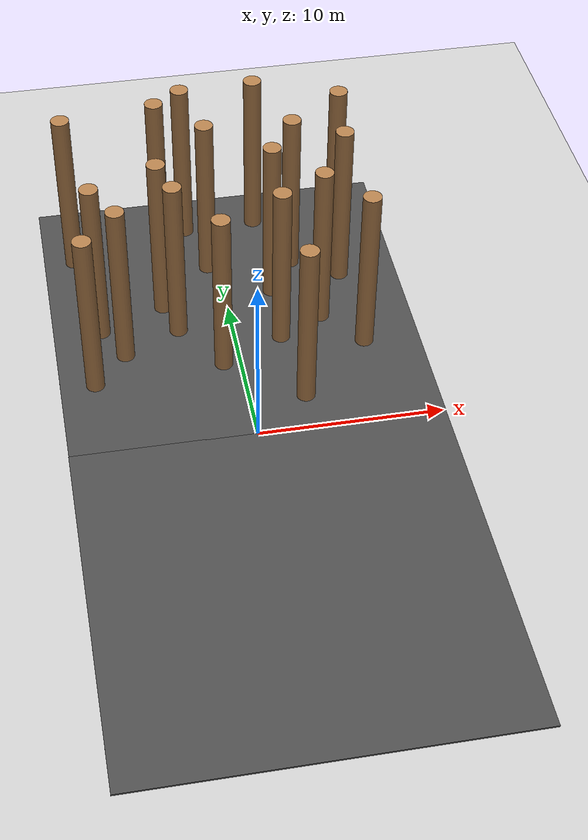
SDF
<sdf version="1.6">
 <world name="default">
  <model name="ground_plane">
   <static>1</static>
   <link name="link">
    <collision name="collision">
     <geometry><plane><normal>0 0 1</normal><size>100 100</size></plane></geometry>
     <surface><friction><ode><mu>100</mu><mu2>50</mu2></ode></friction></surface>
    </collision>
    <visual name="visual">
     <cast_shadows>0</cast_shadows>
     <geometry><plane><normal>0 0 1</normal><size>100 100</size></plane></geometry>
     <material>
      <script><uri>file://media/materials/scripts/gazebo.material</uri><name>Gazebo/Grey</name></script>
     </material>
    </visual>
   </link>
  </model>
  <model name="asphalt_plane_1">
   <static>1</static>
   <link name="link">
    <collision name="collision"><geometry><box><size>20 20 0.1</size></box></geometry></collision>
    <visual name="visual">
     <cast_shadows>0</cast_shadows>
     <geometry><box><size>20 20 0.1</size></box></geometry>
     <material>
      <script>
       <uri>model://asphalt_plane/materials/scripts</uri>
       <uri>model://asphalt_plane/materials/textures</uri>
       <name>vrc/asphalt</name>
      </script>
     </material>
    </visual>
   </link>
   <pose>0.098004 9.97829 0 0 -0 0</pose>
  </model>
  <model name="asphalt_plane_3">
   <static>1</static>
   <link name="link">
    <collision name="collision"><geometry><box><size>20 20 0.1</size></box></geometry></collision>
    <visual name="visual">
     <cast_shadows>0</cast_shadows>
     <geometry><box><size>20 20 0.1</size></box></geometry>
     <material>
      <script>
       <uri>model://asphalt_plane/materials/scripts</uri>
       <uri>model://asphalt_plane/materials/textures</uri>
       <name>vrc/asphalt</name>
      </script>
     </material>
    </visual>
   </link>
   <pose>0.085062 -9.98607 0 0 -0 0</pose>
  </model>
  <model name="train_4">
   <link name="link_0_clone_0_clone_11">
    <pose>4.2784 -11.9007 0.043478 0 -0 0</pose>
    <inertial>
     <mass>1000</mass>
     <inertia><ixx>0.145833</ixx><ixy>0</ixy><ixz>0</ixz><iyy>0.145833</iyy><iyz>0</iyz><izz>0.125</izz></inertia>
    </inertial>
    <visual name="visual">
     <pose>0 0 4.5 0 -0 0</pose>
     <geometry><cylinder><radius>0.5</radius><length>10</length></cylinder></geometry>
     <material>
      <lighting>1</lighting>
      <script><uri>file://media/materials/scripts/gazebo.material</uri><name>Gazebo/WoodFloor</name></script>
      <ambient>0.3 0.3 0.3 1</ambient>
      <diffuse>0.7 0.7 0.7 1</diffuse>
      <specular>0.01 0.01 0.01 1</specular>
      <emissive>0 0 0 1</emissive>
      <shader type="vertex"><normal_map>__default__</normal_map></shader>
     </material>
    </visual>
    <collision name="collision">
     <pose>0 0 4.5 0 -0 0</pose>
     <geometry><cylinder><radius>0.5</radius><length>10</length></cylinder></geometry>
     <surface>
      <friction>
       <ode><mu>1</mu><mu2>1</mu2><fdir1>0 0 0</fdir1><slip1>0</slip1><slip2>0</slip2></ode>
       <torsional>
        <coefficient>1</coefficient>
        <patch_radius>0</patch_radius>
        <surface_radius>0</surface_radius>
        <use_patch_radius>1</use_patch_radius>
        <ode><slip>0</slip></ode>
       </torsional>
      </friction>
      <bounce><restitution_coefficient>0</restitution_coefficient><threshold>1e+06</threshold></bounce>
      <contact>
       <collide_without_contact>0</collide_without_contact>
       <collide_without_contact_bitmask>1</collide_without_contact_bitmask>
       <collide_bitmask>1</collide_bitmask>
       <ode>
        <soft_cfm>0</soft_cfm>
        <soft_erp>0.2</soft_erp>
        <kp>1e+13</kp>
        <kd>1</kd>
        <max_vel>0.01</max_vel>
        <min_depth>0</min_depth>
       </ode>
       <bullet>
        <split_impulse>1</split_impulse>
        <split_impulse_penetration_threshold>-0.01</split_impulse_penetration_threshold>
        <soft_cfm>0</soft_cfm>
        <soft_erp>0.2</soft_erp>
        <kp>1e+13</kp>
        <kd>1</kd>
       </bullet>
      </contact>
     </surface>
    </collision>
   </link>
   <link name="link_0_clone_0_clone_11_clone_8">
    <pose>-6.90192 1.15105 0.043478 0 -0 3e-06</pose>
    <inertial>
     <mass>1000</mass>
     <inertia><ixx>0.145833</ixx><ixy>0</ixy><ixz>0</ixz><iyy>0.145833</iyy><iyz>0</iyz><izz>0.125</izz></inertia>
    </inertial>
    <visual name="visual">
     <pose>0 0 4.5 0 -0 0</pose>
     <geometry><cylinder><radius>0.5</radius><length>10</length></cylinder></geometry>
     <material>
      <lighting>1</lighting>
      <script><uri>file://media/materials/scripts/gazebo.material</uri><name>Gazebo/WoodFloor</name></script>
      <ambient>0.3 0.3 0.3 1</ambient>
      <diffuse>0.7 0.7 0.7 1</diffuse>
      <specular>0.01 0.01 0.01 1</specular>
      <emissive>0 0 0 1</emissive>
      <shader type="vertex"><normal_map>__default__</normal_map></shader>
     </material>
    </visual>
    <collision name="collision">
     <pose>0 0 4.5 0 -0 0</pose>
     <geometry><cylinder><radius>0.5</radius><length>10</length></cylinder></geometry>
     <surface>
      <friction>
       <ode><mu>1</mu><mu2>1</mu2><fdir1>0 0 0</fdir1><slip1>0</slip1><slip2>0</slip2></ode>
       <torsional>
        <coefficient>1</coefficient>
        <patch_radius>0</patch_radius>
        <surface_radius>0</surface_radius>
        <use_patch_radius>1</use_patch_radius>
        <ode><slip>0</slip></ode>
       </torsional>
      </friction>
      <bounce><restitution_coefficient>0</restitution_coefficient><threshold>1e+06</threshold></bounce>
      <contact>
       <collide_without_contact>0</collide_without_contact>
       <collide_without_contact_bitmask>1</collide_without_contact_bitmask>
       <collide_bitmask>1</collide_bitmask>
       <ode>
        <soft_cfm>0</soft_cfm>
        <soft_erp>0.2</soft_erp>
        <kp>1e+13</kp>
        <kd>1</kd>
        <max_vel>0.01</max_vel>
        <min_depth>0</min_depth>
       </ode>
       <bullet>
        <split_impulse>1</split_impulse>
        <split_impulse_penetration_threshold>-0.01</split_impulse_penetration_threshold>
        <soft_cfm>0</soft_cfm>
        <soft_erp>0.2</soft_erp>
        <kp>1e+13</kp>
        <kd>1</kd>
       </bullet>
      </contact>
     </surface>
    </collision>
   </link>
   <link name="link_0_clone_0_clone_5_clone_19_clone_24">
    <pose>-5.97869 -5.13561 0.043478 0 -0 6e-06</pose>
    <inertial>
     <mass>1000</mass>
     <inertia><ixx>0.145833</ixx><ixy>0</ixy><ixz>0</ixz><iyy>0.145833</iyy><iyz>0</iyz><izz>0.125</izz></inertia>
    </inertial>
    <visual name="visual">
     <pose>0 0 4.5 0 -0 0</pose>
     <geometry><cylinder><radius>0.5</radius><length>10</length></cylinder></geometry>
     <material>
      <lighting>1</lighting>
      <script><uri>file://media/materials/scripts/gazebo.material</uri><name>Gazebo/WoodFloor</name></script>
      <ambient>0.3 0.3 0.3 1</ambient>
      <diffuse>0.7 0.7 0.7 1</diffuse>
      <specular>0.01 0.01 0.01 1</specular>
      <emissive>0 0 0 1</emissive>
      <shader type="vertex"><normal_map>__default__</normal_map></shader>
     </material>
    </visual>
    <collision name="collision">
     <pose>0 0 4.5 0 -0 0</pose>
     <geometry><cylinder><radius>0.5</radius><length>10</length></cylinder></geometry>
     <surface>
      <friction>
       <ode><mu>1</mu><mu2>1</mu2><fdir1>0 0 0</fdir1><slip1>0</slip1><slip2>0</slip2></ode>
       <torsional>
        <coefficient>1</coefficient>
        <patch_radius>0</patch_radius>
        <surface_radius>0</surface_radius>
        <use_patch_radius>1</use_patch_radius>
        <ode><slip>0</slip></ode>
       </torsional>
      </friction>
      <bounce><restitution_coefficient>0</restitution_coefficient><threshold>1e+06</threshold></bounce>
      <contact>
       <collide_without_contact>0</collide_without_contact>
       <collide_without_contact_bitmask>1</collide_without_contact_bitmask>
       <collide_bitmask>1</collide_bitmask>
       <ode>
        <soft_cfm>0</soft_cfm>
        <soft_erp>0.2</soft_erp>
        <kp>1e+13</kp>
        <kd>1</kd>
        <max_vel>0.01</max_vel>
        <min_depth>0</min_depth>
       </ode>
       <bullet>
        <split_impulse>1</split_impulse>
        <split_impulse_penetration_threshold>-0.01</split_impulse_penetration_threshold>
        <soft_cfm>0</soft_cfm>
        <soft_erp>0.2</soft_erp>
        <kp>1e+13</kp>
        <kd>1</kd>
       </bullet>
      </contact>
     </surface>
    </collision>
   </link>
   <link name="link_0_clone_0_clone_5_clone_19_clone_32">
    <pose>8.50917 1.28403 0.043478 0 -0 6e-06</pose>
    <inertial>
     <mass>1000</mass>
     <inertia><ixx>0.145833</ixx><ixy>0</ixy><ixz>0</ixz><iyy>0.145833</iyy><iyz>0</iyz><izz>0.125</izz></inertia>
    </inertial>
    <visual name="visual">
     <pose>0 0 4.5 0 -0 0</pose>
     <geometry><cylinder><radius>0.5</radius><length>10</length></cylinder></geometry>
     <material>
      <lighting>1</lighting>
      <script><uri>file://media/materials/scripts/gazebo.material</uri><name>Gazebo/WoodFloor</name></script>
      <ambient>0.3 0.3 0.3 1</ambient>
      <diffuse>0.7 0.7 0.7 1</diffuse>
      <specular>0.01 0.01 0.01 1</specular>
      <emissive>0 0 0 1</emissive>
      <shader type="vertex"><normal_map>__default__</normal_map></shader>
     </material>
    </visual>
    <collision name="collision">
     <pose>0 0 4.5 0 -0 0</pose>
     <geometry><cylinder><radius>0.5</radius><length>10</length></cylinder></geometry>
     <surface>
      <friction>
       <ode><mu>1</mu><mu2>1</mu2><fdir1>0 0 0</fdir1><slip1>0</slip1><slip2>0</slip2></ode>
       <torsional>
        <coefficient>1</coefficient>
        <patch_radius>0</patch_radius>
        <surface_radius>0</surface_radius>
        <use_patch_radius>1</use_patch_radius>
        <ode><slip>0</slip></ode>
       </torsional>
      </friction>
      <bounce><restitution_coefficient>0</restitution_coefficient><threshold>1e+06</threshold></bounce>
      <contact>
       <collide_without_contact>0</collide_without_contact>
       <collide_without_contact_bitmask>1</collide_without_contact_bitmask>
       <collide_bitmask>1</collide_bitmask>
       <ode>
        <soft_cfm>0</soft_cfm>
        <soft_erp>0.2</soft_erp>
        <kp>1e+13</kp>
        <kd>1</kd>
        <max_vel>0.01</max_vel>
        <min_depth>0</min_depth>
       </ode>
       <bullet>
        <split_impulse>1</split_impulse>
        <split_impulse_penetration_threshold>-0.01</split_impulse_penetration_threshold>
        <soft_cfm>0</soft_cfm>
        <soft_erp>0.2</soft_erp>
        <kp>1e+13</kp>
        <kd>1</kd>
       </bullet>
      </contact>
     </surface>
    </collision>
   </link>
   <link name="link_0_clone_0_clone_5_clone_21">
    <pose>0.690093 -0.614865 0.043478 0 -0 3e-06</pose>
    <inertial>
     <mass>1000</mass>
     <inertia><ixx>0.145833</ixx><ixy>0</ixy><ixz>0</ixz><iyy>0.145833</iyy><iyz>0</iyz><izz>0.125</izz></inertia>
    </inertial>
    <visual name="visual">
     <pose>0 0 4.5 0 -0 0</pose>
     <geometry><cylinder><radius>0.5</radius><length>10</length></cylinder></geometry>
     <material>
      <lighting>1</lighting>
      <script><uri>file://media/materials/scripts/gazebo.material</uri><name>Gazebo/WoodFloor</name></script>
      <ambient>0.3 0.3 0.3 1</ambient>
      <diffuse>0.7 0.7 0.7 1</diffuse>
      <specular>0.01 0.01 0.01 1</specular>
      <emissive>0 0 0 1</emissive>
      <shader type="vertex"><normal_map>__default__</normal_map></shader>
     </material>
    </visual>
    <collision name="collision">
     <pose>0 0 4.5 0 -0 0</pose>
     <geometry><cylinder><radius>0.5</radius><length>10</length></cylinder></geometry>
     <surface>
      <friction>
       <ode><mu>1</mu><mu2>1</mu2><fdir1>0 0 0</fdir1><slip1>0</slip1><slip2>0</slip2></ode>
       <torsional>
        <coefficient>1</coefficient>
        <patch_radius>0</patch_radius>
        <surface_radius>0</surface_radius>
        <use_patch_radius>1</use_patch_radius>
        <ode><slip>0</slip></ode>
       </torsional>
      </friction>
      <bounce><restitution_coefficient>0</restitution_coefficient><threshold>1e+06</threshold></bounce>
      <contact>
       <collide_without_contact>0</collide_without_contact>
       <collide_without_contact_bitmask>1</collide_without_contact_bitmask>
       <collide_bitmask>1</collide_bitmask>
       <ode>
        <soft_cfm>0</soft_cfm>
        <soft_erp>0.2</soft_erp>
        <kp>1e+13</kp>
        <kd>1</kd>
        <max_vel>0.01</max_vel>
        <min_depth>0</min_depth>
       </ode>
       <bullet>
        <split_impulse>1</split_impulse>
        <split_impulse_penetration_threshold>-0.01</split_impulse_penetration_threshold>
        <soft_cfm>0</soft_cfm>
        <soft_erp>0.2</soft_erp>
        <kp>1e+13</kp>
        <kd>1</kd>
       </bullet>
      </contact>
     </surface>
    </collision>
   </link>
   <link name="link_0_clone_0_clone_5_clone_22">
    <pose>8.06962 -2.47589 0.043478 0 -0 3e-06</pose>
    <inertial>
     <mass>1000</mass>
     <inertia><ixx>0.145833</ixx><ixy>0</ixy><ixz>0</ixz><iyy>0.145833</iyy><iyz>0</iyz><izz>0.125</izz></inertia>
    </inertial>
    <visual name="visual">
     <pose>0 0 4.5 0 -0 0</pose>
     <geometry><cylinder><radius>0.5</radius><length>10</length></cylinder></geometry>
     <material>
      <lighting>1</lighting>
      <script><uri>file://media/materials/scripts/gazebo.material</uri><name>Gazebo/WoodFloor</name></script>
      <ambient>0.3 0.3 0.3 1</ambient>
      <diffuse>0.7 0.7 0.7 1</diffuse>
      <specular>0.01 0.01 0.01 1</specular>
      <emissive>0 0 0 1</emissive>
      <shader type="vertex"><normal_map>__default__</normal_map></shader>
     </material>
    </visual>
    <collision name="collision">
     <pose>0 0 4.5 0 -0 0</pose>
     <geometry><cylinder><radius>0.5</radius><length>10</length></cylinder></geometry>
     <surface>
      <friction>
       <ode><mu>1</mu><mu2>1</mu2><fdir1>0 0 0</fdir1><slip1>0</slip1><slip2>0</slip2></ode>
       <torsional>
        <coefficient>1</coefficient>
        <patch_radius>0</patch_radius>
        <surface_radius>0</surface_radius>
        <use_patch_radius>1</use_patch_radius>
        <ode><slip>0</slip></ode>
       </torsional>
      </friction>
      <bounce><restitution_coefficient>0</restitution_coefficient><threshold>1e+06</threshold></bounce>
      <contact>
       <collide_without_contact>0</collide_without_contact>
       <collide_without_contact_bitmask>1</collide_without_contact_bitmask>
       <collide_bitmask>1</collide_bitmask>
       <ode>
        <soft_cfm>0</soft_cfm>
        <soft_erp>0.2</soft_erp>
        <kp>1e+13</kp>
        <kd>1</kd>
        <max_vel>0.01</max_vel>
        <min_depth>0</min_depth>
       </ode>
       <bullet>
        <split_impulse>1</split_impulse>
        <split_impulse_penetration_threshold>-0.01</split_impulse_penetration_threshold>
        <soft_cfm>0</soft_cfm>
        <soft_erp>0.2</soft_erp>
        <kp>1e+13</kp>
        <kd>1</kd>
       </bullet>
      </contact>
     </surface>
    </collision>
   </link>
   <link name="link_0_clone_0_clone_5_clone_6_clone">
    <pose>0.335435 -8.77026 0.043478 0 -0 6e-06</pose>
    <inertial>
     <mass>1000</mass>
     <inertia><ixx>0.145833</ixx><ixy>0</ixy><ixz>0</ixz><iyy>0.145833</iyy><iyz>0</iyz><izz>0.125</izz></inertia>
    </inertial>
    <visual name="visual">
     <pose>0 0 4.5 0 -0 0</pose>
     <geometry><cylinder><radius>0.5</radius><length>10</length></cylinder></geometry>
     <material>
      <lighting>1</lighting>
      <script><uri>file://media/materials/scripts/gazebo.material</uri><name>Gazebo/WoodFloor</name></script>
      <ambient>0.3 0.3 0.3 1</ambient>
      <diffuse>0.7 0.7 0.7 1</diffuse>
      <specular>0.01 0.01 0.01 1</specular>
      <emissive>0 0 0 1</emissive>
      <shader type="vertex"><normal_map>__default__</normal_map></shader>
     </material>
    </visual>
    <collision name="collision">
     <pose>0 0 4.5 0 -0 0</pose>
     <geometry><cylinder><radius>0.5</radius><length>10</length></cylinder></geometry>
     <surface>
      <friction>
       <ode><mu>1</mu><mu2>1</mu2><fdir1>0 0 0</fdir1><slip1>0</slip1><slip2>0</slip2></ode>
       <torsional>
        <coefficient>1</coefficient>
        <patch_radius>0</patch_radius>
        <surface_radius>0</surface_radius>
        <use_patch_radius>1</use_patch_radius>
        <ode><slip>0</slip></ode>
       </torsional>
      </friction>
      <bounce><restitution_coefficient>0</restitution_coefficient><threshold>1e+06</threshold></bounce>
      <contact>
       <collide_without_contact>0</collide_without_contact>
       <collide_without_contact_bitmask>1</collide_without_contact_bitmask>
       <collide_bitmask>1</collide_bitmask>
       <ode>
        <soft_cfm>0</soft_cfm>
        <soft_erp>0.2</soft_erp>
        <kp>1e+13</kp>
        <kd>1</kd>
        <max_vel>0.01</max_vel>
        <min_depth>0</min_depth>
       </ode>
       <bullet>
        <split_impulse>1</split_impulse>
        <split_impulse_penetration_threshold>-0.01</split_impulse_penetration_threshold>
        <soft_cfm>0</soft_cfm>
        <soft_erp>0.2</soft_erp>
        <kp>1e+13</kp>
        <kd>1</kd>
       </bullet>
      </contact>
     </surface>
    </collision>
   </link>
   <link name="link_0_clone_0_clone_5_clone_6_clone_19">
    <pose>-0.161254 2.9232 0.043478 0 -0 6e-06</pose>
    <inertial>
     <mass>1000</mass>
     <inertia><ixx>0.145833</ixx><ixy>0</ixy><ixz>0</ixz><iyy>0.145833</iyy><iyz>0</iyz><izz>0.125</izz></inertia>
    </inertial>
    <visual name="visual">
     <pose>0 0 4.5 0 -0 0</pose>
     <geometry><cylinder><radius>0.5</radius><length>10</length></cylinder></geometry>
     <material>
      <lighting>1</lighting>
      <script><uri>file://media/materials/scripts/gazebo.material</uri><name>Gazebo/WoodFloor</name></script>
      <ambient>0.3 0.3 0.3 1</ambient>
      <diffuse>0.7 0.7 0.7 1</diffuse>
      <specular>0.01 0.01 0.01 1</specular>
      <emissive>0 0 0 1</emissive>
      <shader type="vertex"><normal_map>__default__</normal_map></shader>
     </material>
    </visual>
    <collision name="collision">
     <pose>0 0 4.5 0 -0 0</pose>
     <geometry><cylinder><radius>0.5</radius><length>10</length></cylinder></geometry>
     <surface>
      <friction>
       <ode><mu>1</mu><mu2>1</mu2><fdir1>0 0 0</fdir1><slip1>0</slip1><slip2>0</slip2></ode>
       <torsional>
        <coefficient>1</coefficient>
        <patch_radius>0</patch_radius>
        <surface_radius>0</surface_radius>
        <use_patch_radius>1</use_patch_radius>
        <ode><slip>0</slip></ode>
       </torsional>
      </friction>
      <bounce><restitution_coefficient>0</restitution_coefficient><threshold>1e+06</threshold></bounce>
      <contact>
       <collide_without_contact>0</collide_without_contact>
       <collide_without_contact_bitmask>1</collide_without_contact_bitmask>
       <collide_bitmask>1</collide_bitmask>
       <ode>
        <soft_cfm>0</soft_cfm>
        <soft_erp>0.2</soft_erp>
        <kp>1e+13</kp>
        <kd>1</kd>
        <max_vel>0.01</max_vel>
        <min_depth>0</min_depth>
       </ode>
       <bullet>
        <split_impulse>1</split_impulse>
        <split_impulse_penetration_threshold>-0.01</split_impulse_penetration_threshold>
        <soft_cfm>0</soft_cfm>
        <soft_erp>0.2</soft_erp>
        <kp>1e+13</kp>
        <kd>1</kd>
       </bullet>
      </contact>
     </surface>
    </collision>
   </link>
   <link name="link_0_clone_0_clone_5_clone_6_clone_20_clone">
    <pose>3.96296 -3.23891 0.043478 0 -0 9e-06</pose>
    <inertial>
     <mass>1000</mass>
     <inertia><ixx>0.145833</ixx><ixy>0</ixy><ixz>0</ixz><iyy>0.145833</iyy><iyz>0</iyz><izz>0.125</izz></inertia>
    </inertial>
    <visual name="visual">
     <pose>0 0 4.5 0 -0 0</pose>
     <geometry><cylinder><radius>0.5</radius><length>10</length></cylinder></geometry>
     <material>
      <lighting>1</lighting>
      <script><uri>file://media/materials/scripts/gazebo.material</uri><name>Gazebo/WoodFloor</name></script>
      <ambient>0.3 0.3 0.3 1</ambient>
      <diffuse>0.7 0.7 0.7 1</diffuse>
      <specular>0.01 0.01 0.01 1</specular>
      <emissive>0 0 0 1</emissive>
      <shader type="vertex"><normal_map>__default__</normal_map></shader>
     </material>
    </visual>
    <collision name="collision">
     <pose>0 0 4.5 0 -0 0</pose>
     <geometry><cylinder><radius>0.5</radius><length>10</length></cylinder></geometry>
     <surface>
      <friction>
       <ode><mu>1</mu><mu2>1</mu2><fdir1>0 0 0</fdir1><slip1>0</slip1><slip2>0</slip2></ode>
       <torsional>
        <coefficient>1</coefficient>
        <patch_radius>0</patch_radius>
        <surface_radius>0</surface_radius>
        <use_patch_radius>1</use_patch_radius>
        <ode><slip>0</slip></ode>
       </torsional>
      </friction>
      <bounce><restitution_coefficient>0</restitution_coefficient><threshold>1e+06</threshold></bounce>
      <contact>
       <collide_without_contact>0</collide_without_contact>
       <collide_without_contact_bitmask>1</collide_without_contact_bitmask>
       <collide_bitmask>1</collide_bitmask>
       <ode>
        <soft_cfm>0</soft_cfm>
        <soft_erp>0.2</soft_erp>
        <kp>1e+13</kp>
        <kd>1</kd>
        <max_vel>0.01</max_vel>
        <min_depth>0</min_depth>
       </ode>
       <bullet>
        <split_impulse>1</split_impulse>
        <split_impulse_penetration_threshold>-0.01</split_impulse_penetration_threshold>
        <soft_cfm>0</soft_cfm>
        <soft_erp>0.2</soft_erp>
        <kp>1e+13</kp>
        <kd>1</kd>
       </bullet>
      </contact>
     </surface>
    </collision>
   </link>
   <link name="link_0_clone_0_clone_5_clone_6_clone_20_clone_0">
    <pose>6.27357 -5.82931 0.043478 0 -0 9e-06</pose>
    <inertial>
     <mass>1000</mass>
     <inertia><ixx>0.145833</ixx><ixy>0</ixy><ixz>0</ixz><iyy>0.145833</iyy><iyz>0</iyz><izz>0.125</izz></inertia>
    </inertial>
    <visual name="visual">
     <pose>0 0 4.5 0 -0 0</pose>
     <geometry><cylinder><radius>0.5</radius><length>10</length></cylinder></geometry>
     <material>
      <lighting>1</lighting>
      <script><uri>file://media/materials/scripts/gazebo.material</uri><name>Gazebo/WoodFloor</name></script>
      <ambient>0.3 0.3 0.3 1</ambient>
      <diffuse>0.7 0.7 0.7 1</diffuse>
      <specular>0.01 0.01 0.01 1</specular>
      <emissive>0 0 0 1</emissive>
      <shader type="vertex"><normal_map>__default__</normal_map></shader>
     </material>
    </visual>
    <collision name="collision">
     <pose>0 0 4.5 0 -0 0</pose>
     <geometry><cylinder><radius>0.5</radius><length>10</length></cylinder></geometry>
     <surface>
      <friction>
       <ode><mu>1</mu><mu2>1</mu2><fdir1>0 0 0</fdir1><slip1>0</slip1><slip2>0</slip2></ode>
       <torsional>
        <coefficient>1</coefficient>
        <patch_radius>0</patch_radius>
        <surface_radius>0</surface_radius>
        <use_patch_radius>1</use_patch_radius>
        <ode><slip>0</slip></ode>
       </torsional>
      </friction>
      <bounce><restitution_coefficient>0</restitution_coefficient><threshold>1e+06</threshold></bounce>
      <contact>
       <collide_without_contact>0</collide_without_contact>
       <collide_without_contact_bitmask>1</collide_without_contact_bitmask>
       <collide_bitmask>1</collide_bitmask>
       <ode>
        <soft_cfm>0</soft_cfm>
        <soft_erp>0.2</soft_erp>
        <kp>1e+13</kp>
        <kd>1</kd>
        <max_vel>0.01</max_vel>
        <min_depth>0</min_depth>
       </ode>
       <bullet>
        <split_impulse>1</split_impulse>
        <split_impulse_penetration_threshold>-0.01</split_impulse_penetration_threshold>
        <soft_cfm>0</soft_cfm>
        <soft_erp>0.2</soft_erp>
        <kp>1e+13</kp>
        <kd>1</kd>
       </bullet>
      </contact>
     </surface>
    </collision>
   </link>
   <link name="link_0_clone_0_clone_5_clone_6_clone_20_clone_1">
    <pose>8.27397 -8.24678 0.043478 0 -0 9e-06</pose>
    <inertial>
     <mass>1000</mass>
     <inertia><ixx>0.145833</ixx><ixy>0</ixy><ixz>0</ixz><iyy>0.145833</iyy><iyz>0</iyz><izz>0.125</izz></inertia>
    </inertial>
    <visual name="visual">
     <pose>0 0 4.5 0 -0 0</pose>
     <geometry><cylinder><radius>0.5</radius><length>10</length></cylinder></geometry>
     <material>
      <lighting>1</lighting>
      <script><uri>file://media/materials/scripts/gazebo.material</uri><name>Gazebo/WoodFloor</name></script>
      <ambient>0.3 0.3 0.3 1</ambient>
      <diffuse>0.7 0.7 0.7 1</diffuse>
      <specular>0.01 0.01 0.01 1</specular>
      <emissive>0 0 0 1</emissive>
      <shader type="vertex"><normal_map>__default__</normal_map></shader>
     </material>
    </visual>
    <collision name="collision">
     <pose>0 0 4.5 0 -0 0</pose>
     <geometry><cylinder><radius>0.5</radius><length>10</length></cylinder></geometry>
     <surface>
      <friction>
       <ode><mu>1</mu><mu2>1</mu2><fdir1>0 0 0</fdir1><slip1>0</slip1><slip2>0</slip2></ode>
       <torsional>
        <coefficient>1</coefficient>
        <patch_radius>0</patch_radius>
        <surface_radius>0</surface_radius>
        <use_patch_radius>1</use_patch_radius>
        <ode><slip>0</slip></ode>
       </torsional>
      </friction>
      <bounce><restitution_coefficient>0</restitution_coefficient><threshold>1e+06</threshold></bounce>
      <contact>
       <collide_without_contact>0</collide_without_contact>
       <collide_without_contact_bitmask>1</collide_without_contact_bitmask>
       <collide_bitmask>1</collide_bitmask>
       <ode>
        <soft_cfm>0</soft_cfm>
        <soft_erp>0.2</soft_erp>
        <kp>1e+13</kp>
        <kd>1</kd>
        <max_vel>0.01</max_vel>
        <min_depth>0</min_depth>
       </ode>
       <bullet>
        <split_impulse>1</split_impulse>
        <split_impulse_penetration_threshold>-0.01</split_impulse_penetration_threshold>
        <soft_cfm>0</soft_cfm>
        <soft_erp>0.2</soft_erp>
        <kp>1e+13</kp>
        <kd>1</kd>
       </bullet>
      </contact>
     </surface>
    </collision>
   </link>
   <link name="link_0_clone_0_clone_5_clone_6_clone_20_clone_2">
    <pose>-1.71979 1.85713 0.043478 0 -0 9e-06</pose>
    <inertial>
     <mass>1000</mass>
     <inertia><ixx>0.145833</ixx><ixy>0</ixy><ixz>0</ixz><iyy>0.145833</iyy><iyz>0</iyz><izz>0.125</izz></inertia>
    </inertial>
    <visual name="visual">
     <pose>0 0 4.5 0 -0 0</pose>
     <geometry><cylinder><radius>0.5</radius><length>10</length></cylinder></geometry>
     <material>
      <lighting>1</lighting>
      <script><uri>file://media/materials/scripts/gazebo.material</uri><name>Gazebo/WoodFloor</name></script>
      <ambient>0.3 0.3 0.3 1</ambient>
      <diffuse>0.7 0.7 0.7 1</diffuse>
      <specular>0.01 0.01 0.01 1</specular>
      <emissive>0 0 0 1</emissive>
      <shader type="vertex"><normal_map>__default__</normal_map></shader>
     </material>
    </visual>
    <collision name="collision">
     <pose>0 0 4.5 0 -0 0</pose>
     <geometry><cylinder><radius>0.5</radius><length>10</length></cylinder></geometry>
     <surface>
      <friction>
       <ode><mu>1</mu><mu2>1</mu2><fdir1>0 0 0</fdir1><slip1>0</slip1><slip2>0</slip2></ode>
       <torsional>
        <coefficient>1</coefficient>
        <patch_radius>0</patch_radius>
        <surface_radius>0</surface_radius>
        <use_patch_radius>1</use_patch_radius>
        <ode><slip>0</slip></ode>
       </torsional>
      </friction>
      <bounce><restitution_coefficient>0</restitution_coefficient><threshold>1e+06</threshold></bounce>
      <contact>
       <collide_without_contact>0</collide_without_contact>
       <collide_without_contact_bitmask>1</collide_without_contact_bitmask>
       <collide_bitmask>1</collide_bitmask>
       <ode>
        <soft_cfm>0</soft_cfm>
        <soft_erp>0.2</soft_erp>
        <kp>1e+13</kp>
        <kd>1</kd>
        <max_vel>0.01</max_vel>
        <min_depth>0</min_depth>
       </ode>
       <bullet>
        <split_impulse>1</split_impulse>
        <split_impulse_penetration_threshold>-0.01</split_impulse_penetration_threshold>
        <soft_cfm>0</soft_cfm>
        <soft_erp>0.2</soft_erp>
        <kp>1e+13</kp>
        <kd>1</kd>
       </bullet>
      </contact>
     </surface>
    </collision>
   </link>
   <link name="link_0_clone_0_clone_5_clone_6_clone_20_clone_4">
    <pose>-6.72603 -9.24682 0.043478 0 -0 9e-06</pose>
    <inertial>
     <mass>1000</mass>
     <inertia><ixx>0.145833</ixx><ixy>0</ixy><ixz>0</ixz><iyy>0.145833</iyy><iyz>0</iyz><izz>0.125</izz></inertia>
    </inertial>
    <visual name="visual">
     <pose>0 0 4.5 0 -0 0</pose>
     <geometry><cylinder><radius>0.5</radius><length>10</length></cylinder></geometry>
     <material>
      <lighting>1</lighting>
      <script><uri>file://media/materials/scripts/gazebo.material</uri><name>Gazebo/WoodFloor</name></script>
      <ambient>0.3 0.3 0.3 1</ambient>
      <diffuse>0.7 0.7 0.7 1</diffuse>
      <specular>0.01 0.01 0.01 1</specular>
      <emissive>0 0 0 1</emissive>
      <shader type="vertex"><normal_map>__default__</normal_map></shader>
     </material>
    </visual>
    <collision name="collision">
     <pose>0 0 4.5 0 -0 0</pose>
     <geometry><cylinder><radius>0.5</radius><length>10</length></cylinder></geometry>
     <surface>
      <friction>
       <ode><mu>1</mu><mu2>1</mu2><fdir1>0 0 0</fdir1><slip1>0</slip1><slip2>0</slip2></ode>
       <torsional>
        <coefficient>1</coefficient>
        <patch_radius>0</patch_radius>
        <surface_radius>0</surface_radius>
        <use_patch_radius>1</use_patch_radius>
        <ode><slip>0</slip></ode>
       </torsional>
      </friction>
      <bounce><restitution_coefficient>0</restitution_coefficient><threshold>1e+06</threshold></bounce>
      <contact>
       <collide_without_contact>0</collide_without_contact>
       <collide_without_contact_bitmask>1</collide_without_contact_bitmask>
       <collide_bitmask>1</collide_bitmask>
       <ode>
        <soft_cfm>0</soft_cfm>
        <soft_erp>0.2</soft_erp>
        <kp>1e+13</kp>
        <kd>1</kd>
        <max_vel>0.01</max_vel>
        <min_depth>0</min_depth>
       </ode>
       <bullet>
        <split_impulse>1</split_impulse>
        <split_impulse_penetration_threshold>-0.01</split_impulse_penetration_threshold>
        <soft_cfm>0</soft_cfm>
        <soft_erp>0.2</soft_erp>
        <kp>1e+13</kp>
        <kd>1</kd>
       </bullet>
      </contact>
     </surface>
    </collision>
   </link>
   <link name="link_0_clone_0_clone_5_clone_6_clone_20_clone_5">
    <pose>-4.85714 -7.20148 0.043478 0 -0 9e-06</pose>
    <inertial>
     <mass>1000</mass>
     <inertia><ixx>0.145833</ixx><ixy>0</ixy><ixz>0</ixz><iyy>0.145833</iyy><iyz>0</iyz><izz>0.125</izz></inertia>
    </inertial>
    <visual name="visual">
     <pose>0 0 4.5 0 -0 0</pose>
     <geometry><cylinder><radius>0.5</radius><length>10</length></cylinder></geometry>
     <material>
      <lighting>1</lighting>
      <script><uri>file://media/materials/scripts/gazebo.material</uri><name>Gazebo/WoodFloor</name></script>
      <ambient>0.3 0.3 0.3 1</ambient>
      <diffuse>0.7 0.7 0.7 1</diffuse>
      <specular>0.01 0.01 0.01 1</specular>
      <emissive>0 0 0 1</emissive>
      <shader type="vertex"><normal_map>__default__</normal_map></shader>
     </material>
    </visual>
    <collision name="collision">
     <pose>0 0 4.5 0 -0 0</pose>
     <geometry><cylinder><radius>0.5</radius><length>10</length></cylinder></geometry>
     <surface>
      <friction>
       <ode><mu>1</mu><mu2>1</mu2><fdir1>0 0 0</fdir1><slip1>0</slip1><slip2>0</slip2></ode>
       <torsional>
        <coefficient>1</coefficient>
        <patch_radius>0</patch_radius>
        <surface_radius>0</surface_radius>
        <use_patch_radius>1</use_patch_radius>
        <ode><slip>0</slip></ode>
       </torsional>
      </friction>
      <bounce><restitution_coefficient>0</restitution_coefficient><threshold>1e+06</threshold></bounce>
      <contact>
       <collide_without_contact>0</collide_without_contact>
       <collide_without_contact_bitmask>1</collide_without_contact_bitmask>
       <collide_bitmask>1</collide_bitmask>
       <ode>
        <soft_cfm>0</soft_cfm>
        <soft_erp>0.2</soft_erp>
        <kp>1e+13</kp>
        <kd>1</kd>
        <max_vel>0.01</max_vel>
        <min_depth>0</min_depth>
       </ode>
       <bullet>
        <split_impulse>1</split_impulse>
        <split_impulse_penetration_threshold>-0.01</split_impulse_penetration_threshold>
        <soft_cfm>0</soft_cfm>
        <soft_erp>0.2</soft_erp>
        <kp>1e+13</kp>
        <kd>1</kd>
       </bullet>
      </contact>
     </surface>
    </collision>
   </link>
   <link name="link_0_clone_0_clone_5_clone_6_clone_20_clone_6">
    <pose>-2.31142 -3.61552 0.043478 0 -0 9e-06</pose>
    <inertial>
     <mass>1000</mass>
     <inertia><ixx>0.145833</ixx><ixy>0</ixy><ixz>0</ixz><iyy>0.145833</iyy><iyz>0</iyz><izz>0.125</izz></inertia>
    </inertial>
    <visual name="visual">
     <pose>0 0 4.5 0 -0 0</pose>
     <geometry><cylinder><radius>0.5</radius><length>10</length></cylinder></geometry>
     <material>
      <lighting>1</lighting>
      <script><uri>file://media/materials/scripts/gazebo.material</uri><name>Gazebo/WoodFloor</name></script>
      <ambient>0.3 0.3 0.3 1</ambient>
      <diffuse>0.7 0.7 0.7 1</diffuse>
      <specular>0.01 0.01 0.01 1</specular>
      <emissive>0 0 0 1</emissive>
      <shader type="vertex"><normal_map>__default__</normal_map></shader>
     </material>
    </visual>
    <collision name="collision">
     <pose>0 0 4.5 0 -0 0</pose>
     <geometry><cylinder><radius>0.5</radius><length>10</length></cylinder></geometry>
     <surface>
      <friction>
       <ode><mu>1</mu><mu2>1</mu2><fdir1>0 0 0</fdir1><slip1>0</slip1><slip2>0</slip2></ode>
       <torsional>
        <coefficient>1</coefficient>
        <patch_radius>0</patch_radius>
        <surface_radius>0</surface_radius>
        <use_patch_radius>1</use_patch_radius>
        <ode><slip>0</slip></ode>
       </torsional>
      </friction>
      <bounce><restitution_coefficient>0</restitution_coefficient><threshold>1e+06</threshold></bounce>
      <contact>
       <collide_without_contact>0</collide_without_contact>
       <collide_without_contact_bitmask>1</collide_without_contact_bitmask>
       <collide_bitmask>1</collide_bitmask>
       <ode>
        <soft_cfm>0</soft_cfm>
        <soft_erp>0.2</soft_erp>
        <kp>1e+13</kp>
        <kd>1</kd>
        <max_vel>0.01</max_vel>
        <min_depth>0</min_depth>
       </ode>
       <bullet>
        <split_impulse>1</split_impulse>
        <split_impulse_penetration_threshold>-0.01</split_impulse_penetration_threshold>
        <soft_cfm>0</soft_cfm>
        <soft_erp>0.2</soft_erp>
        <kp>1e+13</kp>
        <kd>1</kd>
       </bullet>
      </contact>
     </surface>
    </collision>
   </link>
   <link name="link_0_clone_0_clone_5_clone_6_clone_20_clone_7">
    <pose>3.97449 3.10651 0.043478 0 -0 9e-06</pose>
    <inertial>
     <mass>1000</mass>
     <inertia><ixx>0.145833</ixx><ixy>0</ixy><ixz>0</ixz><iyy>0.145833</iyy><iyz>0</iyz><izz>0.125</izz></inertia>
    </inertial>
    <visual name="visual">
     <pose>0 0 4.5 0 -0 0</pose>
     <geometry><cylinder><radius>0.5</radius><length>10</length></cylinder></geometry>
     <material>
      <lighting>1</lighting>
      <script><uri>file://media/materials/scripts/gazebo.material</uri><name>Gazebo/WoodFloor</name></script>
      <ambient>0.3 0.3 0.3 1</ambient>
      <diffuse>0.7 0.7 0.7 1</diffuse>
      <specular>0.01 0.01 0.01 1</specular>
      <emissive>0 0 0 1</emissive>
      <shader type="vertex"><normal_map>__default__</normal_map></shader>
     </material>
    </visual>
    <collision name="collision">
     <pose>0 0 4.5 0 -0 0</pose>
     <geometry><cylinder><radius>0.5</radius><length>10</length></cylinder></geometry>
     <surface>
      <friction>
       <ode><mu>1</mu><mu2>1</mu2><fdir1>0 0 0</fdir1><slip1>0</slip1><slip2>0</slip2></ode>
       <torsional>
        <coefficient>1</coefficient>
        <patch_radius>0</patch_radius>
        <surface_radius>0</surface_radius>
        <use_patch_radius>1</use_patch_radius>
        <ode><slip>0</slip></ode>
       </torsional>
      </friction>
      <bounce><restitution_coefficient>0</restitution_coefficient><threshold>1e+06</threshold></bounce>
      <contact>
       <collide_without_contact>0</collide_without_contact>
       <collide_without_contact_bitmask>1</collide_without_contact_bitmask>
       <collide_bitmask>1</collide_bitmask>
       <ode>
        <soft_cfm>0</soft_cfm>
        <soft_erp>0.2</soft_erp>
        <kp>1e+13</kp>
        <kd>1</kd>
        <max_vel>0.01</max_vel>
        <min_depth>0</min_depth>
       </ode>
       <bullet>
        <split_impulse>1</split_impulse>
        <split_impulse_penetration_threshold>-0.01</split_impulse_penetration_threshold>
        <soft_cfm>0</soft_cfm>
        <soft_erp>0.2</soft_erp>
        <kp>1e+13</kp>
        <kd>1</kd>
       </bullet>
      </contact>
     </surface>
    </collision>
   </link>
   <link name="link_0_clone_0_clone_5_clone_6_clone_3">
    <pose>3.79882 -7.14652 0.043478 0 -0 6e-06</pose>
    <inertial>
     <mass>1000</mass>
     <inertia><ixx>0.145833</ixx><ixy>0</ixy><ixz>0</ixz><iyy>0.145833</iyy><iyz>0</iyz><izz>0.125</izz></inertia>
    </inertial>
    <visual name="visual">
     <pose>0 0 4.5 0 -0 0</pose>
     <geometry><cylinder><radius>0.5</radius><length>10</length></cylinder></geometry>
     <material>
      <lighting>1</lighting>
      <script><uri>file://media/materials/scripts/gazebo.material</uri><name>Gazebo/WoodFloor</name></script>
      <ambient>0.3 0.3 0.3 1</ambient>
      <diffuse>0.7 0.7 0.7 1</diffuse>
      <specular>0.01 0.01 0.01 1</specular>
      <emissive>0 0 0 1</emissive>
      <shader type="vertex"><normal_map>__default__</normal_map></shader>
     </material>
    </visual>
    <collision name="collision">
     <pose>0 0 4.5 0 -0 0</pose>
     <geometry><cylinder><radius>0.5</radius><length>10</length></cylinder></geometry>
     <surface>
      <friction>
       <ode><mu>1</mu><mu2>1</mu2><fdir1>0 0 0</fdir1><slip1>0</slip1><slip2>0</slip2></ode>
       <torsional>
        <coefficient>1</coefficient>
        <patch_radius>0</patch_radius>
        <surface_radius>0</surface_radius>
        <use_patch_radius>1</use_patch_radius>
        <ode><slip>0</slip></ode>
       </torsional>
      </friction>
      <bounce><restitution_coefficient>0</restitution_coefficient><threshold>1e+06</threshold></bounce>
      <contact>
       <collide_without_contact>0</collide_without_contact>
       <collide_without_contact_bitmask>1</collide_without_contact_bitmask>
       <collide_bitmask>1</collide_bitmask>
       <ode>
        <soft_cfm>0</soft_cfm>
        <soft_erp>0.2</soft_erp>
        <kp>1e+13</kp>
        <kd>1</kd>
        <max_vel>0.01</max_vel>
        <min_depth>0</min_depth>
       </ode>
       <bullet>
        <split_impulse>1</split_impulse>
        <split_impulse_penetration_threshold>-0.01</split_impulse_penetration_threshold>
        <soft_cfm>0</soft_cfm>
        <soft_erp>0.2</soft_erp>
        <kp>1e+13</kp>
        <kd>1</kd>
       </bullet>
      </contact>
     </surface>
    </collision>
   </link>
   <link name="link_0_clone_0_clone_5_clone_6_clone_4">
    <pose>5.47641 -0.929652 0.043478 0 -0 6e-06</pose>
    <inertial>
     <mass>1000</mass>
     <inertia><ixx>0.145833</ixx><ixy>0</ixy><ixz>0</ixz><iyy>0.145833</iyy><iyz>0</iyz><izz>0.125</izz></inertia>
    </inertial>
    <visual name="visual">
     <pose>0 0 4.5 0 -0 0</pose>
     <geometry><cylinder><radius>0.5</radius><length>10</length></cylinder></geometry>
     <material>
      <lighting>1</lighting>
      <script><uri>file://media/materials/scripts/gazebo.material</uri><name>Gazebo/WoodFloor</name></script>
      <ambient>0.3 0.3 0.3 1</ambient>
      <diffuse>0.7 0.7 0.7 1</diffuse>
      <specular>0.01 0.01 0.01 1</specular>
      <emissive>0 0 0 1</emissive>
      <shader type="vertex"><normal_map>__default__</normal_map></shader>
     </material>
    </visual>
    <collision name="collision">
     <pose>0 0 4.5 0 -0 0</pose>
     <geometry><cylinder><radius>0.5</radius><length>10</length></cylinder></geometry>
     <surface>
      <friction>
       <ode><mu>1</mu><mu2>1</mu2><fdir1>0 0 0</fdir1><slip1>0</slip1><slip2>0</slip2></ode>
       <torsional>
        <coefficient>1</coefficient>
        <patch_radius>0</patch_radius>
        <surface_radius>0</surface_radius>
        <use_patch_radius>1</use_patch_radius>
        <ode><slip>0</slip></ode>
       </torsional>
      </friction>
      <bounce><restitution_coefficient>0</restitution_coefficient><threshold>1e+06</threshold></bounce>
      <contact>
       <collide_without_contact>0</collide_without_contact>
       <collide_without_contact_bitmask>1</collide_without_contact_bitmask>
       <collide_bitmask>1</collide_bitmask>
       <ode>
        <soft_cfm>0</soft_cfm>
        <soft_erp>0.2</soft_erp>
        <kp>1e+13</kp>
        <kd>1</kd>
        <max_vel>0.01</max_vel>
        <min_depth>0</min_depth>
       </ode>
       <bullet>
        <split_impulse>1</split_impulse>
        <split_impulse_penetration_threshold>-0.01</split_impulse_penetration_threshold>
        <soft_cfm>0</soft_cfm>
        <soft_erp>0.2</soft_erp>
        <kp>1e+13</kp>
        <kd>1</kd>
       </bullet>
      </contact>
     </surface>
    </collision>
   </link>
   <link name="link_0_clone_0_clone_5_clone_6_clone_5">
    <pose>-1.72604 -5.68714 0.043478 0 -0 6e-06</pose>
    <inertial>
     <mass>1000</mass>
     <inertia><ixx>0.145833</ixx><ixy>0</ixy><ixz>0</ixz><iyy>0.145833</iyy><iyz>0</iyz><izz>0.125</izz></inertia>
    </inertial>
    <visual name="visual">
     <pose>0 0 4.5 0 -0 0</pose>
     <geometry><cylinder><radius>0.5</radius><length>10</length></cylinder></geometry>
     <material>
      <lighting>1</lighting>
      <script><uri>file://media/materials/scripts/gazebo.material</uri><name>Gazebo/WoodFloor</name></script>
      <ambient>0.3 0.3 0.3 1</ambient>
      <diffuse>0.7 0.7 0.7 1</diffuse>
      <specular>0.01 0.01 0.01 1</specular>
      <emissive>0 0 0 1</emissive>
      <shader type="vertex"><normal_map>__default__</normal_map></shader>
     </material>
    </visual>
    <collision name="collision">
     <pose>0 0 4.5 0 -0 0</pose>
     <geometry><cylinder><radius>0.5</radius><length>10</length></cylinder></geometry>
     <surface>
      <friction>
       <ode><mu>1</mu><mu2>1</mu2><fdir1>0 0 0</fdir1><slip1>0</slip1><slip2>0</slip2></ode>
       <torsional>
        <coefficient>1</coefficient>
        <patch_radius>0</patch_radius>
        <surface_radius>0</surface_radius>
        <use_patch_radius>1</use_patch_radius>
        <ode><slip>0</slip></ode>
       </torsional>
      </friction>
      <bounce><restitution_coefficient>0</restitution_coefficient><threshold>1e+06</threshold></bounce>
      <contact>
       <collide_without_contact>0</collide_without_contact>
       <collide_without_contact_bitmask>1</collide_without_contact_bitmask>
       <collide_bitmask>1</collide_bitmask>
       <ode>
        <soft_cfm>0</soft_cfm>
        <soft_erp>0.2</soft_erp>
        <kp>1e+13</kp>
        <kd>1</kd>
        <max_vel>0.01</max_vel>
        <min_depth>0</min_depth>
       </ode>
       <bullet>
        <split_impulse>1</split_impulse>
        <split_impulse_penetration_threshold>-0.01</split_impulse_penetration_threshold>
        <soft_cfm>0</soft_cfm>
        <soft_erp>0.2</soft_erp>
        <kp>1e+13</kp>
        <kd>1</kd>
       </bullet>
      </contact>
     </surface>
    </collision>
   </link>
   <static>1</static>
   <pose>-1.27394 14.2468 0.506522 0 0 -3e-06</pose>
  </model>
 </world>
</sdf>
